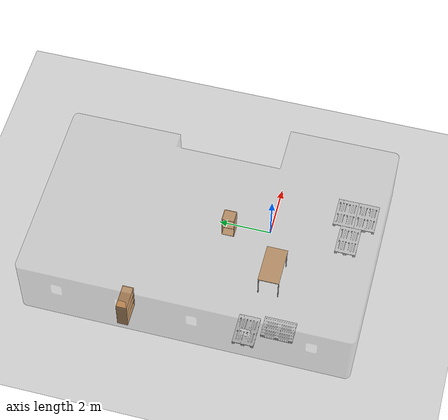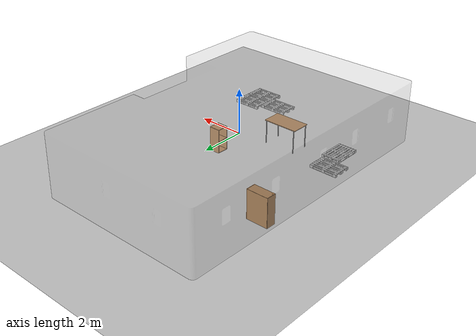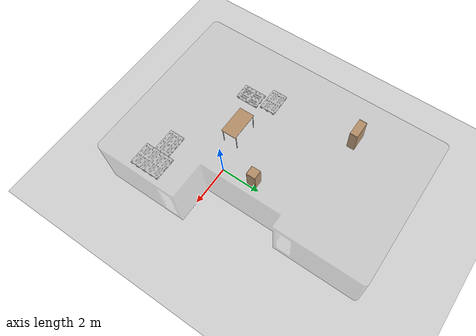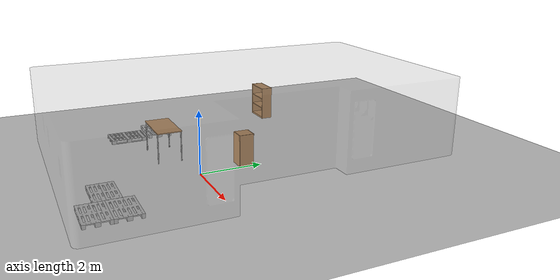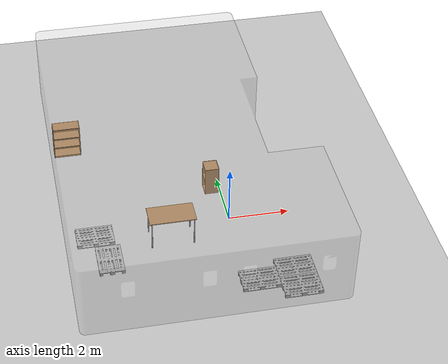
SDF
<sdf version="1.4">
 <world name="default">
  <physics type="ode">
   <gravity>0 0 -1</gravity>
   <ode>
    <solver><type>quick</type><iters>20</iters><sor>1</sor></solver>
    <constraints>
     <cfm>0</cfm>
     <erp>0.2</erp>
     <contact_max_correcting_vel>100</contact_max_correcting_vel>
     <contact_surface_layer>0</contact_surface_layer>
    </constraints>
   </ode>
   <max_step_size>0.003</max_step_size>
   <real_time_factor>1</real_time_factor>
   <real_time_update_rate>1000</real_time_update_rate>
  </physics>
  <scene><grid>false</grid></scene>
  <light name="sun" type="directional">
   <pose>2 0 10 0 -0 0</pose>
   <diffuse>0.8 0.8 0.8 1</diffuse>
   <specular>0.2 0.2 0.2 1</specular>
   <attenuation>
    <range>1000</range>
    <constant>0.9</constant>
    <linear>0.01</linear>
    <quadratic>0.001</quadratic>
   </attenuation>
   <direction>-0.5 0.1 -0.9</direction>
  </light>
  <model name="ground_plane">
   <static>1</static>
   <link name="link">
    <collision name="collision">
     <geometry><plane><normal>0 0 1</normal><size>100 100</size></plane></geometry>
     <surface><friction><ode><mu>100</mu><mu2>50</mu2></ode></friction></surface>
    </collision>
    <visual name="visual">
     <cast_shadows>0</cast_shadows>
     <geometry><plane><normal>0 0 1</normal><size>100 100</size></plane></geometry>
     <material>
      <script><uri>file://media/materials/scripts/gazebo.material</uri><name>Gazebo/Grey</name></script>
     </material>
    </visual>
    <velocity_decay><linear>0</linear><angular>0</angular></velocity_decay>
   </link>
  </model>
  <model name="ship_interior">
   <static>1</static>
   <link name="body">
    <visual name="visual">
     <transparency>0.75</transparency>
     <geometry><mesh><uri>model://ship_interior/meshes/ship_interior.stl</uri></mesh></geometry>
    </visual>
    <collision name="collision">
     <geometry><mesh><uri>model://ship_interior/meshes/ship_interior.stl</uri></mesh></geometry>
    </collision>
    <velocity_decay><linear>0</linear><angular>0</angular></velocity_decay>
   </link>
  </model>
  <scene><ambient>0.4 0.4 0.4 1</ambient><background>0.7 0.7 0.7 1</background><shadows>1</shadows></scene>
  <model name="bookshelf">
   <static>1</static>
   <link name="link">
    <inertial><mass>1</mass></inertial>
    <collision name="back">
     <pose>0 0.005 0.6 0 -0 0</pose>
     <geometry><box><size>0.9 0.01 1.2</size></box></geometry>
    </collision>
    <visual name="visual1">
     <pose>0 0.005 0.6 0 -0 0</pose>
     <geometry><box><size>0.9 0.01 1.2</size></box></geometry>
     <material>
      <script><uri>file://media/materials/scripts/gazebo.material</uri><name>Gazebo/Wood</name></script>
     </material>
    </visual>
    <collision name="left_side">
     <pose>0.45 -0.195 0.6 0 -0 0</pose>
     <geometry><box><size>0.02 0.4 1.2</size></box></geometry>
    </collision>
    <visual name="visual2">
     <pose>0.45 -0.195 0.6 0 -0 0</pose>
     <geometry><box><size>0.02 0.4 1.2</size></box></geometry>
     <material>
      <script><uri>file://media/materials/scripts/gazebo.material</uri><name>Gazebo/Wood</name></script>
     </material>
    </visual>
    <collision name="right_side">
     <pose>-0.45 -0.195 0.6 0 -0 0</pose>
     <geometry><box><size>0.02 0.4 1.2</size></box></geometry>
    </collision>
    <visual name="visual3">
     <pose>-0.45 -0.195 0.6 0 -0 0</pose>
     <geometry><box><size>0.02 0.4 1.2</size></box></geometry>
     <material>
      <script><uri>file://media/materials/scripts/gazebo.material</uri><name>Gazebo/Wood</name></script>
     </material>
    </visual>
    <collision name="bottom">
     <pose>0 -0.195 0.03 0 -0 0</pose>
     <geometry><box><size>0.88 0.4 0.06</size></box></geometry>
    </collision>
    <visual name="visual4">
     <pose>0 -0.195 0.03 0 -0 0</pose>
     <geometry><box><size>0.88 0.4 0.06</size></box></geometry>
     <material>
      <script><uri>file://media/materials/scripts/gazebo.material</uri><name>Gazebo/Wood</name></script>
     </material>
    </visual>
    <collision name="top">
     <pose>0 -0.195 1.19 0 -0 0</pose>
     <geometry><box><size>0.88 0.4 0.02</size></box></geometry>
    </collision>
    <visual name="visual5">
     <pose>0 -0.195 1.19 0 -0 0</pose>
     <geometry><box><size>0.88 0.4 0.02</size></box></geometry>
     <material>
      <script><uri>file://media/materials/scripts/gazebo.material</uri><name>Gazebo/Wood</name></script>
     </material>
    </visual>
    <collision name="low_shelf">
     <pose>0 -0.195 0.43 0 -0 0</pose>
     <geometry><box><size>0.88 0.4 0.02</size></box></geometry>
    </collision>
    <visual name="visual6">
     <pose>0 -0.195 0.43 0 -0 0</pose>
     <geometry><box><size>0.88 0.4 0.02</size></box></geometry>
     <material>
      <script><uri>file://media/materials/scripts/gazebo.material</uri><name>Gazebo/Wood</name></script>
     </material>
    </visual>
    <collision name="high_shelf">
     <pose>0 -0.195 0.8 0 -0 0</pose>
     <geometry><box><size>0.88 0.4 0.02</size></box></geometry>
    </collision>
    <visual name="visual7">
     <pose>0 -0.195 0.8 0 -0 0</pose>
     <geometry><box><size>0.88 0.4 0.02</size></box></geometry>
     <material>
      <script><uri>file://media/materials/scripts/gazebo.material</uri><name>Gazebo/Wood</name></script>
     </material>
    </visual>
    <velocity_decay><linear>0</linear><angular>0</angular></velocity_decay>
   </link>
   <pose>-4.8066 4.53803 0 0 -0 0</pose>
  </model>
  <model name="cabinet">
   <static>1</static>
   <link name="cabinet_bottom_plate">
    <inertial>
     <pose>0 0 -1 0 -0 0</pose>
     <inertia><ixx>2.05</ixx><ixy>0</ixy><ixz>0</ixz><iyy>2.05</iyy><iyz>0</iyz><izz>2.05</izz></inertia>
     <mass>25</mass>
    </inertial>
    <collision name="cabinet_bottom_plate_geom">
     <pose>0 0 0.01 0 -0 0</pose>
     <geometry><box><size>0.45 0.45 0.02</size></box></geometry>
    </collision>
    <visual name="cabinet_bottom_plate_geom_visual">
     <pose>0 0 0.01 0 -0 0</pose>
     <geometry><box><size>0.45 0.45 0.02</size></box></geometry>
     <material>
      <script><uri>file://media/materials/scripts/gazebo.material</uri><name>Gazebo/Wood</name></script>
     </material>
    </visual>
    <collision name="cabinet_bottom_plate_geom_cabinet_back_plate">
     <pose>0.235 0 0.51 0 -0 0</pose>
     <geometry><box><size>0.02 0.45 1.02</size></box></geometry>
    </collision>
    <visual name="cabinet_bottom_plate_geom_cabinet_back_plate_visual">
     <pose>0.235 0 0.51 0 -0 0</pose>
     <geometry><box><size>0.02 0.45 1.02</size></box></geometry>
     <material>
      <script><uri>file://media/materials/scripts/gazebo.material</uri><name>Gazebo/Wood</name></script>
     </material>
    </visual>
    <collision name="cabinet_bottom_plate_geom_cabinet_left_plate">
     <pose>0 0.235 0.51 0 -0 0</pose>
     <geometry><box><size>0.45 0.02 1.02</size></box></geometry>
    </collision>
    <visual name="cabinet_bottom_plate_geom_cabinet_left_plate_visual">
     <pose>0 0.235 0.51 0 -0 0</pose>
     <geometry><box><size>0.45 0.02 1.02</size></box></geometry>
     <material>
      <script><uri>file://media/materials/scripts/gazebo.material</uri><name>Gazebo/Wood</name></script>
     </material>
    </visual>
    <collision name="cabinet_bottom_plate_geom_cabinet_middle_plate">
     <pose>0 0 0.51 0 -0 0</pose>
     <geometry><box><size>0.45 0.45 0.02</size></box></geometry>
    </collision>
    <visual name="cabinet_bottom_plate_geom_cabinet_middle_plate_visual">
     <pose>0 0 0.51 0 -0 0</pose>
     <geometry><box><size>0.45 0.45 0.02</size></box></geometry>
     <material>
      <script><uri>file://media/materials/scripts/gazebo.material</uri><name>Gazebo/Wood</name></script>
     </material>
    </visual>
    <collision name="cabinet_bottom_plate_geom_cabinet_right_plate">
     <pose>0 -0.235 0.51 0 -0 0</pose>
     <geometry><box><size>0.45 0.02 1.02</size></box></geometry>
    </collision>
    <visual name="cabinet_bottom_plate_geom_cabinet_right_plate_visual">
     <pose>0 -0.235 0.51 0 -0 0</pose>
     <geometry><box><size>0.45 0.02 1.02</size></box></geometry>
     <material>
      <script><uri>file://media/materials/scripts/gazebo.material</uri><name>Gazebo/Wood</name></script>
     </material>
    </visual>
    <collision name="cabinet_bottom_plate_geom_cabinet_top_plate">
     <pose>0 0 1.01 0 -0 0</pose>
     <geometry><box><size>0.45 0.45 0.02</size></box></geometry>
    </collision>
    <visual name="cabinet_bottom_plate_geom_cabinet_top_plate_visual">
     <pose>0 0 1.01 0 -0 0</pose>
     <geometry><box><size>0.45 0.45 0.02</size></box></geometry>
     <material>
      <script><uri>file://media/materials/scripts/gazebo.material</uri><name>Gazebo/Wood</name></script>
     </material>
    </visual>
    <velocity_decay><linear>0</linear><angular>0</angular></velocity_decay>
   </link>
   <pose>-0.29586 1.56499 0 0 -0 0</pose>
  </model>
  <model name="table">
   <static>1</static>
   <link name="link">
    <collision name="surface">
     <pose>0 0 1 0 -0 0</pose>
     <geometry><box><size>1.5 0.8 0.03</size></box></geometry>
    </collision>
    <visual name="visual1">
     <pose>0 0 1 0 -0 0</pose>
     <geometry><box><size>1.5 0.8 0.03</size></box></geometry>
     <material>
      <script><uri>file://media/materials/scripts/gazebo.material</uri><name>Gazebo/Wood</name></script>
     </material>
    </visual>
    <collision name="front_left_leg">
     <pose>0.68 0.38 0.5 0 -0 0</pose>
     <geometry><cylinder><radius>0.02</radius><length>1</length></cylinder></geometry>
    </collision>
    <visual name="front_left_leg">
     <pose>0.68 0.38 0.5 0 -0 0</pose>
     <geometry><cylinder><radius>0.02</radius><length>1</length></cylinder></geometry>
     <material>
      <script><uri>file://media/materials/scripts/gazebo.material</uri><name>Gazebo/Grey</name></script>
     </material>
    </visual>
    <collision name="front_right_leg">
     <pose>0.68 -0.38 0.5 0 -0 0</pose>
     <geometry><cylinder><radius>0.02</radius><length>1</length></cylinder></geometry>
    </collision>
    <visual name="front_right_leg">
     <pose>0.68 -0.38 0.5 0 -0 0</pose>
     <geometry><cylinder><radius>0.02</radius><length>1</length></cylinder></geometry>
     <material>
      <script><uri>file://media/materials/scripts/gazebo.material</uri><name>Gazebo/Grey</name></script>
     </material>
    </visual>
    <collision name="back_right_leg">
     <pose>-0.68 -0.38 0.5 0 -0 0</pose>
     <geometry><cylinder><radius>0.02</radius><length>1</length></cylinder></geometry>
    </collision>
    <visual name="back_right_leg">
     <pose>-0.68 -0.38 0.5 0 -0 0</pose>
     <geometry><cylinder><radius>0.02</radius><length>1</length></cylinder></geometry>
     <material>
      <script><uri>file://media/materials/scripts/gazebo.material</uri><name>Gazebo/Grey</name></script>
     </material>
    </visual>
    <collision name="back_left_leg">
     <pose>-0.68 0.38 0.5 0 -0 0</pose>
     <geometry><cylinder><radius>0.02</radius><length>1</length></cylinder></geometry>
    </collision>
    <visual name="back_left_leg">
     <pose>-0.68 0.38 0.5 0 -0 0</pose>
     <geometry><cylinder><radius>0.02</radius><length>1</length></cylinder></geometry>
     <material>
      <script><uri>file://media/materials/scripts/gazebo.material</uri><name>Gazebo/Grey</name></script>
     </material>
    </visual>
    <velocity_decay><linear>0</linear><angular>0</angular></velocity_decay>
   </link>
   <pose>-2 -0.530822 0 0 -0 0</pose>
  </model>
  <model name="eur_pallet">
   <static>1</static>
   <link name="link">
    <inertial><mass>22</mass></inertial>
    <collision name="collision">
     <geometry><mesh><uri>model://eur_pallet/meshes/eur_pallet.stl</uri></mesh></geometry>
     <surface>
      <friction><ode><mu>5</mu><mu2>5</mu2></ode></friction>
      <contact>
       <ode>
        <soft_cfm>0.001</soft_cfm>
        <soft_erp>0.2</soft_erp>
        <kp>10000</kp>
        <kd>1000</kd>
        <max_vel>0.01</max_vel>
        <min_depth>0.001</min_depth>
       </ode>
      </contact>
     </surface>
    </collision>
    <visual name="visual">
     <geometry><mesh><uri>model://eur_pallet/meshes/eur_pallet.stl</uri></mesh></geometry>
    </visual>
    <velocity_decay><linear>0</linear><angular>0</angular></velocity_decay>
   </link>
   <pose>-4.09002 -1.27632 0 0 -0 0</pose>
  </model>
  <model name="eur_pallet_0">
   <static>1</static>
   <link name="link">
    <inertial><mass>22</mass></inertial>
    <collision name="collision">
     <geometry><mesh><uri>model://eur_pallet/meshes/eur_pallet.stl</uri></mesh></geometry>
     <surface>
      <friction><ode><mu>5</mu><mu2>5</mu2></ode></friction>
      <contact>
       <ode>
        <soft_cfm>0.001</soft_cfm>
        <soft_erp>0.2</soft_erp>
        <kp>10000</kp>
        <kd>1000</kd>
        <max_vel>0.01</max_vel>
        <min_depth>0.001</min_depth>
       </ode>
      </contact>
     </surface>
    </collision>
    <visual name="visual">
     <geometry><mesh><uri>model://eur_pallet/meshes/eur_pallet.stl</uri></mesh></geometry>
    </visual>
    <velocity_decay><linear>0</linear><angular>0</angular></velocity_decay>
   </link>
   <pose>-4.42721 -0.137889 0 0 0 -1.5708</pose>
  </model>
  <model name="eur_pallet_1">
   <static>1</static>
   <link name="link">
    <inertial><mass>22</mass></inertial>
    <collision name="collision">
     <geometry><mesh><uri>model://eur_pallet/meshes/eur_pallet.stl</uri></mesh></geometry>
     <surface>
      <friction><ode><mu>5</mu><mu2>5</mu2></ode></friction>
      <contact>
       <ode>
        <soft_cfm>0.001</soft_cfm>
        <soft_erp>0.2</soft_erp>
        <kp>10000</kp>
        <kd>1000</kd>
        <max_vel>0.01</max_vel>
        <min_depth>0.001</min_depth>
       </ode>
      </contact>
     </surface>
    </collision>
    <visual name="visual">
     <geometry><mesh><uri>model://eur_pallet/meshes/eur_pallet.stl</uri></mesh></geometry>
    </visual>
    <velocity_decay><linear>0</linear><angular>0</angular></velocity_decay>
   </link>
   <pose>0.336443 -2.947096 0 0 -0 1.5708</pose>
  </model>
  <model name="eur_pallet_2">
   <static>1</static>
   <link name="link">
    <inertial><mass>22</mass></inertial>
    <collision name="collision">
     <geometry><mesh><uri>model://eur_pallet/meshes/eur_pallet.stl</uri></mesh></geometry>
    </collision>
    <visual name="visual">
     <geometry><mesh><uri>model://eur_pallet/meshes/eur_pallet.stl</uri></mesh></geometry>
    </visual>
    <velocity_decay><linear>0</linear><angular>0</angular></velocity_decay>
   </link>
   <pose>1.53526 -3.433548 0 0 -0 1.5708</pose>
  </model>
  <model name="eur_pallet_3">
   <static>1</static>
   <link name="link">
    <inertial><mass>22</mass></inertial>
    <collision name="collision">
     <geometry><mesh><uri>model://eur_pallet/meshes/eur_pallet.stl</uri></mesh></geometry>
    </collision>
    <visual name="visual">
     <geometry><mesh><uri>model://eur_pallet/meshes/eur_pallet.stl</uri></mesh></geometry>
    </visual>
    <velocity_decay><linear>0</linear><angular>0</angular></velocity_decay>
   </link>
   <pose>1.53526 -2.633548 0 0 -0 1.5708</pose>
  </model>
 </world>
</sdf>
